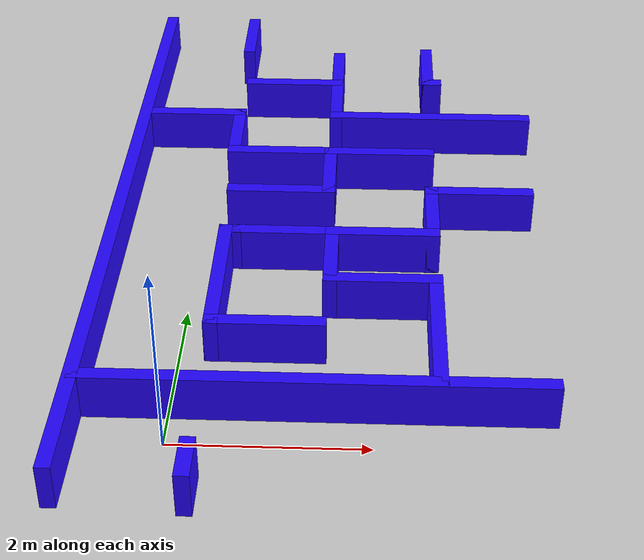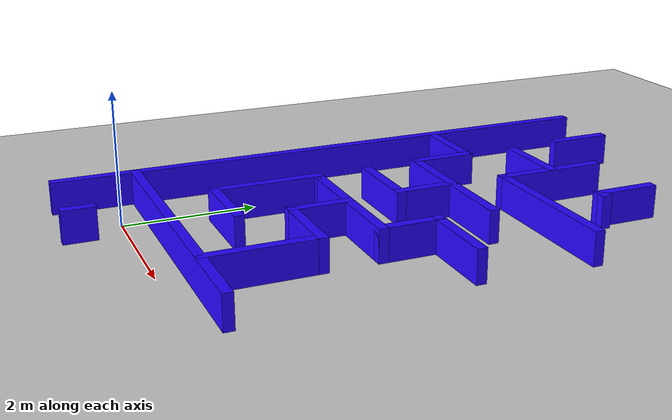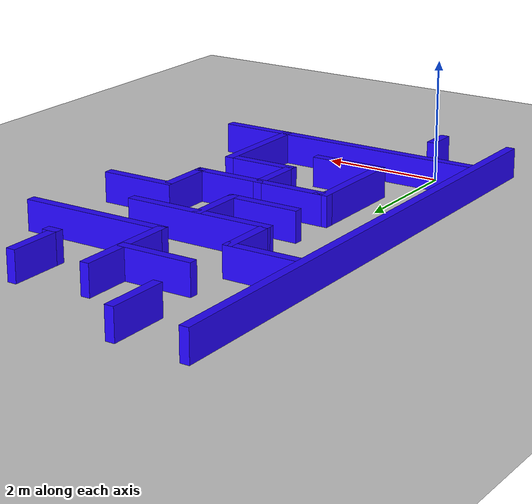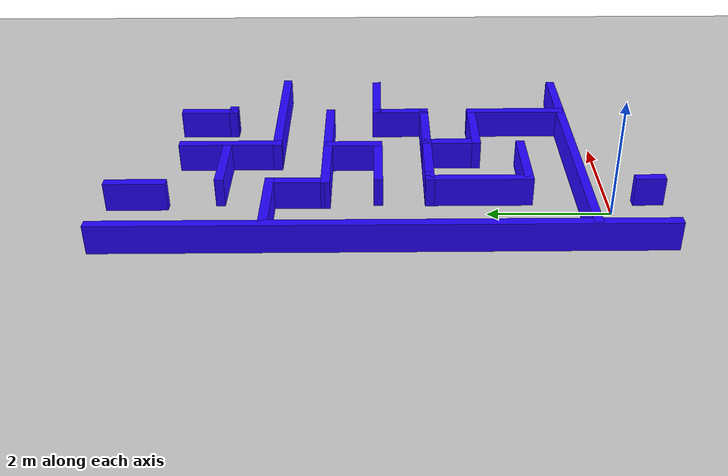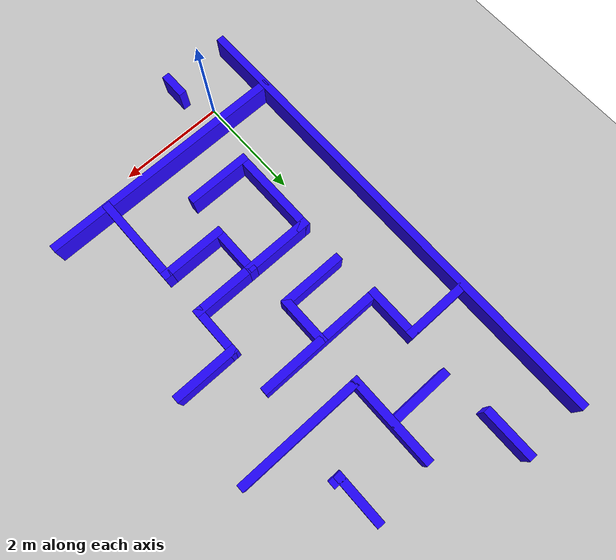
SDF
<sdf version="1.7">
 <world name="default">
  <model name="ground_plane">
   <static>1</static>
   <link name="link">
    <collision name="collision">
     <geometry><plane><normal>0 0 1</normal><size>100 100</size></plane></geometry>
     <surface><friction><ode><mu>100</mu><mu2>50</mu2></ode></friction></surface>
    </collision>
    <visual name="visual">
     <cast_shadows>0</cast_shadows>
     <geometry><plane><normal>0 0 1</normal><size>100 100</size></plane></geometry>
     <material>
      <script><uri>file://media/materials/scripts/gazebo.material</uri><name>Gazebo/Grey</name></script>
     </material>
    </visual>
   </link>
  </model>
  <model name="maze_blue">
   <link name="Wall_0">
    <pose>-5.9185 -0.1475 0 0 -0 1.5708</pose>
    <visual name="Wall_0_Visual">
     <pose>0 0 0.25 0 -0 0</pose>
     <geometry><box><size>9 0.15 0.5</size></box></geometry>
     <material>
      <script><uri>file://media/materials/scripts/gazebo.material</uri><name>Gazebo/Grey</name></script>
      <ambient>0.14 0.012 1 1</ambient>
      <shader type="pixel"/>
     </material>
     <meta><layer>0</layer></meta>
    </visual>
    <collision name="Wall_0_Collision">
     <pose>0 0 0.25 0 -0 0</pose>
     <geometry><box><size>9 0.15 0.5</size></box></geometry>
     <surface>
      <friction>
       <ode><mu>1</mu><mu2>1</mu2><fdir1>0 0 0</fdir1><slip1>0</slip1><slip2>0</slip2></ode>
       <torsional>
        <coefficient>1</coefficient>
        <patch_radius>0</patch_radius>
        <surface_radius>0</surface_radius>
        <use_patch_radius>1</use_patch_radius>
        <ode><slip>0</slip></ode>
       </torsional>
      </friction>
      <bounce><restitution_coefficient>0</restitution_coefficient><threshold>1e+06</threshold></bounce>
      <contact>
       <collide_without_contact>0</collide_without_contact>
       <collide_without_contact_bitmask>1</collide_without_contact_bitmask>
       <collide_bitmask>1</collide_bitmask>
       <ode>
        <soft_cfm>0</soft_cfm>
        <soft_erp>0.2</soft_erp>
        <kp>1e+13</kp>
        <kd>1</kd>
        <max_vel>0.01</max_vel>
        <min_depth>0</min_depth>
       </ode>
       <bullet>
        <split_impulse>1</split_impulse>
        <split_impulse_penetration_threshold>-0.01</split_impulse_penetration_threshold>
        <soft_cfm>0</soft_cfm>
        <soft_erp>0.2</soft_erp>
        <kp>1e+13</kp>
        <kd>1</kd>
       </bullet>
      </contact>
     </surface>
    </collision>
   </link>
   <link name="Wall_10">
    <pose>-3.5785 -3.3705 0 0 -0 0</pose>
    <visual name="Wall_10_Visual">
     <pose>0 0 0.25 0 -0 0</pose>
     <geometry><box><size>4.75 0.15 0.5</size></box></geometry>
     <material>
      <script><uri>file://media/materials/scripts/gazebo.material</uri><name>Gazebo/Grey</name></script>
      <ambient>0.14 0.012 1 1</ambient>
      <shader type="pixel"/>
     </material>
     <meta><layer>0</layer></meta>
    </visual>
    <collision name="Wall_10_Collision">
     <pose>0 0 0.25 0 -0 0</pose>
     <geometry><box><size>4.75 0.15 0.5</size></box></geometry>
     <surface>
      <friction>
       <ode><mu>1</mu><mu2>1</mu2><fdir1>0 0 0</fdir1><slip1>0</slip1><slip2>0</slip2></ode>
       <torsional>
        <coefficient>1</coefficient>
        <patch_radius>0</patch_radius>
        <surface_radius>0</surface_radius>
        <use_patch_radius>1</use_patch_radius>
        <ode><slip>0</slip></ode>
       </torsional>
      </friction>
      <bounce><restitution_coefficient>0</restitution_coefficient><threshold>1e+06</threshold></bounce>
      <contact>
       <collide_without_contact>0</collide_without_contact>
       <collide_without_contact_bitmask>1</collide_without_contact_bitmask>
       <collide_bitmask>1</collide_bitmask>
       <ode>
        <soft_cfm>0</soft_cfm>
        <soft_erp>0.2</soft_erp>
        <kp>1e+13</kp>
        <kd>1</kd>
        <max_vel>0.01</max_vel>
        <min_depth>0</min_depth>
       </ode>
       <bullet>
        <split_impulse>1</split_impulse>
        <split_impulse_penetration_threshold>-0.01</split_impulse_penetration_threshold>
        <soft_cfm>0</soft_cfm>
        <soft_erp>0.2</soft_erp>
        <kp>1e+13</kp>
        <kd>1</kd>
       </bullet>
      </contact>
     </surface>
    </collision>
   </link>
   <link name="Wall_26">
    <pose>-2.3595 -2.5505 0 0 -0 1.5708</pose>
    <visual name="Wall_26_Visual">
     <pose>0 0 0.25 0 -0 0</pose>
     <geometry><box><size>1.75 0.15 0.5</size></box></geometry>
     <material>
      <script><uri>file://media/materials/scripts/gazebo.material</uri><name>Gazebo/Grey</name></script>
      <ambient>0.14 0.012 1 1</ambient>
      <shader type="pixel"/>
     </material>
     <meta><layer>0</layer></meta>
    </visual>
    <collision name="Wall_26_Collision">
     <pose>0 0 0.25 0 -0 0</pose>
     <geometry><box><size>1.75 0.15 0.5</size></box></geometry>
     <surface>
      <friction>
       <ode><mu>1</mu><mu2>1</mu2><fdir1>0 0 0</fdir1><slip1>0</slip1><slip2>0</slip2></ode>
       <torsional>
        <coefficient>1</coefficient>
        <patch_radius>0</patch_radius>
        <surface_radius>0</surface_radius>
        <use_patch_radius>1</use_patch_radius>
        <ode><slip>0</slip></ode>
       </torsional>
      </friction>
      <bounce><restitution_coefficient>0</restitution_coefficient><threshold>1e+06</threshold></bounce>
      <contact>
       <collide_without_contact>0</collide_without_contact>
       <collide_without_contact_bitmask>1</collide_without_contact_bitmask>
       <collide_bitmask>1</collide_bitmask>
       <ode>
        <soft_cfm>0</soft_cfm>
        <soft_erp>0.2</soft_erp>
        <kp>1e+13</kp>
        <kd>1</kd>
        <max_vel>0.01</max_vel>
        <min_depth>0</min_depth>
       </ode>
       <bullet>
        <split_impulse>1</split_impulse>
        <split_impulse_penetration_threshold>-0.01</split_impulse_penetration_threshold>
        <soft_cfm>0</soft_cfm>
        <soft_erp>0.2</soft_erp>
        <kp>1e+13</kp>
        <kd>1</kd>
       </bullet>
      </contact>
     </surface>
    </collision>
   </link>
   <link name="Wall_27">
    <pose>-2.918 -1.7505 0 0 -0 3.14159</pose>
    <visual name="Wall_27_Visual">
     <pose>0 0 0.25 0 -0 0</pose>
     <geometry><box><size>1.26736 0.15 0.5</size></box></geometry>
     <material>
      <script><uri>file://media/materials/scripts/gazebo.material</uri><name>Gazebo/Grey</name></script>
      <ambient>0.14 0.012 1 1</ambient>
      <shader type="pixel"/>
     </material>
     <meta><layer>0</layer></meta>
    </visual>
    <collision name="Wall_27_Collision">
     <pose>0 0 0.25 0 -0 0</pose>
     <geometry><box><size>1.26736 0.15 0.5</size></box></geometry>
     <surface>
      <friction>
       <ode><mu>1</mu><mu2>1</mu2><fdir1>0 0 0</fdir1><slip1>0</slip1><slip2>0</slip2></ode>
       <torsional>
        <coefficient>1</coefficient>
        <patch_radius>0</patch_radius>
        <surface_radius>0</surface_radius>
        <use_patch_radius>1</use_patch_radius>
        <ode><slip>0</slip></ode>
       </torsional>
      </friction>
      <bounce><restitution_coefficient>0</restitution_coefficient><threshold>1e+06</threshold></bounce>
      <contact>
       <collide_without_contact>0</collide_without_contact>
       <collide_without_contact_bitmask>1</collide_without_contact_bitmask>
       <collide_bitmask>1</collide_bitmask>
       <ode>
        <soft_cfm>0</soft_cfm>
        <soft_erp>0.2</soft_erp>
        <kp>1e+13</kp>
        <kd>1</kd>
        <max_vel>0.01</max_vel>
        <min_depth>0</min_depth>
       </ode>
       <bullet>
        <split_impulse>1</split_impulse>
        <split_impulse_penetration_threshold>-0.01</split_impulse_penetration_threshold>
        <soft_cfm>0</soft_cfm>
        <soft_erp>0.2</soft_erp>
        <kp>1e+13</kp>
        <kd>1</kd>
       </bullet>
      </contact>
     </surface>
    </collision>
   </link>
   <link name="Wall_28">
    <pose>-3.4765 -1.3255 0 0 -0 1.5708</pose>
    <visual name="Wall_28_Visual">
     <pose>0 0 0.25 0 -0 0</pose>
     <geometry><box><size>1.00034 0.15 0.5</size></box></geometry>
     <material>
      <script><uri>file://media/materials/scripts/gazebo.material</uri><name>Gazebo/Grey</name></script>
      <ambient>0.14 0.012 1 1</ambient>
      <shader type="pixel"/>
     </material>
     <meta><layer>0</layer></meta>
    </visual>
    <collision name="Wall_28_Collision">
     <pose>0 0 0.25 0 -0 0</pose>
     <geometry><box><size>1.00034 0.15 0.5</size></box></geometry>
     <surface>
      <friction>
       <ode><mu>1</mu><mu2>1</mu2><fdir1>0 0 0</fdir1><slip1>0</slip1><slip2>0</slip2></ode>
       <torsional>
        <coefficient>1</coefficient>
        <patch_radius>0</patch_radius>
        <surface_radius>0</surface_radius>
        <use_patch_radius>1</use_patch_radius>
        <ode><slip>0</slip></ode>
       </torsional>
      </friction>
      <bounce><restitution_coefficient>0</restitution_coefficient><threshold>1e+06</threshold></bounce>
      <contact>
       <collide_without_contact>0</collide_without_contact>
       <collide_without_contact_bitmask>1</collide_without_contact_bitmask>
       <collide_bitmask>1</collide_bitmask>
       <ode>
        <soft_cfm>0</soft_cfm>
        <soft_erp>0.2</soft_erp>
        <kp>1e+13</kp>
        <kd>1</kd>
        <max_vel>0.01</max_vel>
        <min_depth>0</min_depth>
       </ode>
       <bullet>
        <split_impulse>1</split_impulse>
        <split_impulse_penetration_threshold>-0.01</split_impulse_penetration_threshold>
        <soft_cfm>0</soft_cfm>
        <soft_erp>0.2</soft_erp>
        <kp>1e+13</kp>
        <kd>1</kd>
       </bullet>
      </contact>
     </surface>
    </collision>
   </link>
   <link name="Wall_29">
    <pose>-4.018 -0.9005 0 0 -0 3.14159</pose>
    <visual name="Wall_29_Visual">
     <pose>0 0 0.25 0 -0 0</pose>
     <geometry><box><size>1.23267 0.15 0.5</size></box></geometry>
     <material>
      <script><uri>file://media/materials/scripts/gazebo.material</uri><name>Gazebo/Grey</name></script>
      <ambient>0.14 0.012 1 1</ambient>
      <shader type="pixel"/>
     </material>
     <meta><layer>0</layer></meta>
    </visual>
    <collision name="Wall_29_Collision">
     <pose>0 0 0.25 0 -0 0</pose>
     <geometry><box><size>1.23267 0.15 0.5</size></box></geometry>
     <surface>
      <friction>
       <ode><mu>1</mu><mu2>1</mu2><fdir1>0 0 0</fdir1><slip1>0</slip1><slip2>0</slip2></ode>
       <torsional>
        <coefficient>1</coefficient>
        <patch_radius>0</patch_radius>
        <surface_radius>0</surface_radius>
        <use_patch_radius>1</use_patch_radius>
        <ode><slip>0</slip></ode>
       </torsional>
      </friction>
      <bounce><restitution_coefficient>0</restitution_coefficient><threshold>1e+06</threshold></bounce>
      <contact>
       <collide_without_contact>0</collide_without_contact>
       <collide_without_contact_bitmask>1</collide_without_contact_bitmask>
       <collide_bitmask>1</collide_bitmask>
       <ode>
        <soft_cfm>0</soft_cfm>
        <soft_erp>0.2</soft_erp>
        <kp>1e+13</kp>
        <kd>1</kd>
        <max_vel>0.01</max_vel>
        <min_depth>0</min_depth>
       </ode>
       <bullet>
        <split_impulse>1</split_impulse>
        <split_impulse_penetration_threshold>-0.01</split_impulse_penetration_threshold>
        <soft_cfm>0</soft_cfm>
        <soft_erp>0.2</soft_erp>
        <kp>1e+13</kp>
        <kd>1</kd>
       </bullet>
      </contact>
     </surface>
    </collision>
   </link>
   <link name="Wall_30">
    <pose>-4.6095 -0.9005 0 0 -0 3.14159</pose>
    <visual name="Wall_30_Visual">
     <pose>0 0 0.25 0 -0 0</pose>
     <geometry><box><size>0.25 0.15 0.5</size></box></geometry>
     <material>
      <script><uri>file://media/materials/scripts/gazebo.material</uri><name>Gazebo/Grey</name></script>
      <ambient>0.14 0.012 1 1</ambient>
      <shader type="pixel"/>
     </material>
     <meta><layer>0</layer></meta>
    </visual>
    <collision name="Wall_30_Collision">
     <pose>0 0 0.25 0 -0 0</pose>
     <geometry><box><size>0.25 0.15 0.5</size></box></geometry>
     <surface>
      <friction>
       <ode><mu>1</mu><mu2>1</mu2><fdir1>0 0 0</fdir1><slip1>0</slip1><slip2>0</slip2></ode>
       <torsional>
        <coefficient>1</coefficient>
        <patch_radius>0</patch_radius>
        <surface_radius>0</surface_radius>
        <use_patch_radius>1</use_patch_radius>
        <ode><slip>0</slip></ode>
       </torsional>
      </friction>
      <bounce><restitution_coefficient>0</restitution_coefficient><threshold>1e+06</threshold></bounce>
      <contact>
       <collide_without_contact>0</collide_without_contact>
       <collide_without_contact_bitmask>1</collide_without_contact_bitmask>
       <collide_bitmask>1</collide_bitmask>
       <ode>
        <soft_cfm>0</soft_cfm>
        <soft_erp>0.2</soft_erp>
        <kp>1e+13</kp>
        <kd>1</kd>
        <max_vel>0.01</max_vel>
        <min_depth>0</min_depth>
       </ode>
       <bullet>
        <split_impulse>1</split_impulse>
        <split_impulse_penetration_threshold>-0.01</split_impulse_penetration_threshold>
        <soft_cfm>0</soft_cfm>
        <soft_erp>0.2</soft_erp>
        <kp>1e+13</kp>
        <kd>1</kd>
       </bullet>
      </contact>
     </surface>
    </collision>
   </link>
   <link name="Wall_31">
    <pose>-4.6595 -1.7005 0 0 0 -1.5708</pose>
    <visual name="Wall_31_Visual">
     <pose>0 0 0.25 0 -0 0</pose>
     <geometry><box><size>1.75 0.15 0.5</size></box></geometry>
     <material>
      <script><uri>file://media/materials/scripts/gazebo.material</uri><name>Gazebo/Grey</name></script>
      <ambient>0.14 0.012 1 1</ambient>
      <shader type="pixel"/>
     </material>
     <meta><layer>0</layer></meta>
    </visual>
    <collision name="Wall_31_Collision">
     <pose>0 0 0.25 0 -0 0</pose>
     <geometry><box><size>1.75 0.15 0.5</size></box></geometry>
     <surface>
      <friction>
       <ode><mu>1</mu><mu2>1</mu2><fdir1>0 0 0</fdir1><slip1>0</slip1><slip2>0</slip2></ode>
       <torsional>
        <coefficient>1</coefficient>
        <patch_radius>0</patch_radius>
        <surface_radius>0</surface_radius>
        <use_patch_radius>1</use_patch_radius>
        <ode><slip>0</slip></ode>
       </torsional>
      </friction>
      <bounce><restitution_coefficient>0</restitution_coefficient><threshold>1e+06</threshold></bounce>
      <contact>
       <collide_without_contact>0</collide_without_contact>
       <collide_without_contact_bitmask>1</collide_without_contact_bitmask>
       <collide_bitmask>1</collide_bitmask>
       <ode>
        <soft_cfm>0</soft_cfm>
        <soft_erp>0.2</soft_erp>
        <kp>1e+13</kp>
        <kd>1</kd>
        <max_vel>0.01</max_vel>
        <min_depth>0</min_depth>
       </ode>
       <bullet>
        <split_impulse>1</split_impulse>
        <split_impulse_penetration_threshold>-0.01</split_impulse_penetration_threshold>
        <soft_cfm>0</soft_cfm>
        <soft_erp>0.2</soft_erp>
        <kp>1e+13</kp>
        <kd>1</kd>
       </bullet>
      </contact>
     </surface>
    </collision>
   </link>
   <link name="Wall_32">
    <pose>-4.1095 -2.5005 0 0 -0 0</pose>
    <visual name="Wall_32_Visual">
     <pose>0 0 0.25 0 -0 0</pose>
     <geometry><box><size>1.25 0.15 0.5</size></box></geometry>
     <material>
      <script><uri>file://media/materials/scripts/gazebo.material</uri><name>Gazebo/Grey</name></script>
      <ambient>0.14 0.012 1 1</ambient>
      <shader type="pixel"/>
     </material>
     <meta><layer>0</layer></meta>
    </visual>
    <collision name="Wall_32_Collision">
     <pose>0 0 0.25 0 -0 0</pose>
     <geometry><box><size>1.25 0.15 0.5</size></box></geometry>
     <surface>
      <friction>
       <ode><mu>1</mu><mu2>1</mu2><fdir1>0 0 0</fdir1><slip1>0</slip1><slip2>0</slip2></ode>
       <torsional>
        <coefficient>1</coefficient>
        <patch_radius>0</patch_radius>
        <surface_radius>0</surface_radius>
        <use_patch_radius>1</use_patch_radius>
        <ode><slip>0</slip></ode>
       </torsional>
      </friction>
      <bounce><restitution_coefficient>0</restitution_coefficient><threshold>1e+06</threshold></bounce>
      <contact>
       <collide_without_contact>0</collide_without_contact>
       <collide_without_contact_bitmask>1</collide_without_contact_bitmask>
       <collide_bitmask>1</collide_bitmask>
       <ode>
        <soft_cfm>0</soft_cfm>
        <soft_erp>0.2</soft_erp>
        <kp>1e+13</kp>
        <kd>1</kd>
        <max_vel>0.01</max_vel>
        <min_depth>0</min_depth>
       </ode>
       <bullet>
        <split_impulse>1</split_impulse>
        <split_impulse_penetration_threshold>-0.01</split_impulse_penetration_threshold>
        <soft_cfm>0</soft_cfm>
        <soft_erp>0.2</soft_erp>
        <kp>1e+13</kp>
        <kd>1</kd>
       </bullet>
      </contact>
     </surface>
    </collision>
   </link>
   <link name="Wall_5">
    <pose>-4.6815 -4.4525 0 0 -0 1.5708</pose>
    <visual name="Wall_5_Visual">
     <pose>0 0 0.25 0 -0 0</pose>
     <geometry><box><size>0.5 0.15 0.5</size></box></geometry>
     <material>
      <script><uri>file://media/materials/scripts/gazebo.material</uri><name>Gazebo/Grey</name></script>
      <ambient>0.14 0.012 1 1</ambient>
      <shader type="pixel"/>
     </material>
     <meta><layer>0</layer></meta>
    </visual>
    <collision name="Wall_5_Collision">
     <pose>0 0 0.25 0 -0 0</pose>
     <geometry><box><size>0.5 0.15 0.5</size></box></geometry>
     <surface>
      <friction>
       <ode><mu>1</mu><mu2>1</mu2><fdir1>0 0 0</fdir1><slip1>0</slip1><slip2>0</slip2></ode>
       <torsional>
        <coefficient>1</coefficient>
        <patch_radius>0</patch_radius>
        <surface_radius>0</surface_radius>
        <use_patch_radius>1</use_patch_radius>
        <ode><slip>0</slip></ode>
       </torsional>
      </friction>
      <bounce><restitution_coefficient>0</restitution_coefficient><threshold>1e+06</threshold></bounce>
      <contact>
       <collide_without_contact>0</collide_without_contact>
       <collide_without_contact_bitmask>1</collide_without_contact_bitmask>
       <collide_bitmask>1</collide_bitmask>
       <ode>
        <soft_cfm>0</soft_cfm>
        <soft_erp>0.2</soft_erp>
        <kp>1e+13</kp>
        <kd>1</kd>
        <max_vel>0.01</max_vel>
        <min_depth>0</min_depth>
       </ode>
       <bullet>
        <split_impulse>1</split_impulse>
        <split_impulse_penetration_threshold>-0.01</split_impulse_penetration_threshold>
        <soft_cfm>0</soft_cfm>
        <soft_erp>0.2</soft_erp>
        <kp>1e+13</kp>
        <kd>1</kd>
       </bullet>
      </contact>
     </surface>
    </collision>
   </link>
   <link name="Wall_59">
    <pose>-2.918 -0.9005 0 0 -0 0</pose>
    <visual name="Wall_59_Visual">
     <pose>0 0 0.25 0 -0 0</pose>
     <geometry><box><size>1.26736 0.15 0.5</size></box></geometry>
     <material>
      <script><uri>file://media/materials/scripts/gazebo.material</uri><name>Gazebo/Grey</name></script>
      <ambient>0.14 0.012 1 1</ambient>
      <shader type="pixel"/>
     </material>
     <meta><layer>0</layer></meta>
    </visual>
    <collision name="Wall_59_Collision">
     <pose>0 0 0.25 0 -0 0</pose>
     <geometry><box><size>1.26736 0.15 0.5</size></box></geometry>
     <surface>
      <friction>
       <ode><mu>1</mu><mu2>1</mu2><fdir1>0 0 0</fdir1><slip1>0</slip1><slip2>0</slip2></ode>
       <torsional>
        <coefficient>1</coefficient>
        <patch_radius>0</patch_radius>
        <surface_radius>0</surface_radius>
        <use_patch_radius>1</use_patch_radius>
        <ode><slip>0</slip></ode>
       </torsional>
      </friction>
      <bounce><restitution_coefficient>0</restitution_coefficient><threshold>1e+06</threshold></bounce>
      <contact>
       <collide_without_contact>0</collide_without_contact>
       <collide_without_contact_bitmask>1</collide_without_contact_bitmask>
       <collide_bitmask>1</collide_bitmask>
       <ode>
        <soft_cfm>0</soft_cfm>
        <soft_erp>0.2</soft_erp>
        <kp>1e+13</kp>
        <kd>1</kd>
        <max_vel>0.01</max_vel>
        <min_depth>0</min_depth>
       </ode>
       <bullet>
        <split_impulse>1</split_impulse>
        <split_impulse_penetration_threshold>-0.01</split_impulse_penetration_threshold>
        <soft_cfm>0</soft_cfm>
        <soft_erp>0.2</soft_erp>
        <kp>1e+13</kp>
        <kd>1</kd>
       </bullet>
      </contact>
     </surface>
    </collision>
   </link>
   <link name="Wall_60">
    <pose>-2.3595 -0.4755 0 0 -0 1.5708</pose>
    <visual name="Wall_60_Visual">
     <pose>0 0 0.25 0 -0 0</pose>
     <geometry><box><size>1 0.15 0.5</size></box></geometry>
     <material>
      <script><uri>file://media/materials/scripts/gazebo.material</uri><name>Gazebo/Grey</name></script>
      <ambient>0.14 0.012 1 1</ambient>
      <shader type="pixel"/>
     </material>
     <meta><layer>0</layer></meta>
    </visual>
    <collision name="Wall_60_Collision">
     <pose>0 0 0.25 0 -0 0</pose>
     <geometry><box><size>1 0.15 0.5</size></box></geometry>
     <surface>
      <friction>
       <ode><mu>1</mu><mu2>1</mu2><fdir1>0 0 0</fdir1><slip1>0</slip1><slip2>0</slip2></ode>
       <torsional>
        <coefficient>1</coefficient>
        <patch_radius>0</patch_radius>
        <surface_radius>0</surface_radius>
        <use_patch_radius>1</use_patch_radius>
        <ode><slip>0</slip></ode>
       </torsional>
      </friction>
      <bounce><restitution_coefficient>0</restitution_coefficient><threshold>1e+06</threshold></bounce>
      <contact>
       <collide_without_contact>0</collide_without_contact>
       <collide_without_contact_bitmask>1</collide_without_contact_bitmask>
       <collide_bitmask>1</collide_bitmask>
       <ode>
        <soft_cfm>0</soft_cfm>
        <soft_erp>0.2</soft_erp>
        <kp>1e+13</kp>
        <kd>1</kd>
        <max_vel>0.01</max_vel>
        <min_depth>0</min_depth>
       </ode>
       <bullet>
        <split_impulse>1</split_impulse>
        <split_impulse_penetration_threshold>-0.01</split_impulse_penetration_threshold>
        <soft_cfm>0</soft_cfm>
        <soft_erp>0.2</soft_erp>
        <kp>1e+13</kp>
        <kd>1</kd>
       </bullet>
      </contact>
     </surface>
    </collision>
   </link>
   <link name="Wall_61">
    <pose>-1.8095 -0.0505 0 0 -0 0</pose>
    <visual name="Wall_61_Visual">
     <pose>0 0 0.25 0 -0 0</pose>
     <geometry><box><size>1.25 0.15 0.5</size></box></geometry>
     <material>
      <script><uri>file://media/materials/scripts/gazebo.material</uri><name>Gazebo/Grey</name></script>
      <ambient>0.14 0.012 1 1</ambient>
      <shader type="pixel"/>
     </material>
     <meta><layer>0</layer></meta>
    </visual>
    <collision name="Wall_61_Collision">
     <pose>0 0 0.25 0 -0 0</pose>
     <geometry><box><size>1.25 0.15 0.5</size></box></geometry>
     <surface>
      <friction>
       <ode><mu>1</mu><mu2>1</mu2><fdir1>0 0 0</fdir1><slip1>0</slip1><slip2>0</slip2></ode>
       <torsional>
        <coefficient>1</coefficient>
        <patch_radius>0</patch_radius>
        <surface_radius>0</surface_radius>
        <use_patch_radius>1</use_patch_radius>
        <ode><slip>0</slip></ode>
       </torsional>
      </friction>
      <bounce><restitution_coefficient>0</restitution_coefficient><threshold>1e+06</threshold></bounce>
      <contact>
       <collide_without_contact>0</collide_without_contact>
       <collide_without_contact_bitmask>1</collide_without_contact_bitmask>
       <collide_bitmask>1</collide_bitmask>
       <ode>
        <soft_cfm>0</soft_cfm>
        <soft_erp>0.2</soft_erp>
        <kp>1e+13</kp>
        <kd>1</kd>
        <max_vel>0.01</max_vel>
        <min_depth>0</min_depth>
       </ode>
       <bullet>
        <split_impulse>1</split_impulse>
        <split_impulse_penetration_threshold>-0.01</split_impulse_penetration_threshold>
        <soft_cfm>0</soft_cfm>
        <soft_erp>0.2</soft_erp>
        <kp>1e+13</kp>
        <kd>1</kd>
       </bullet>
      </contact>
     </surface>
    </collision>
   </link>
   <link name="Wall_73">
    <pose>-4.7425 3.8265 0 0 0 -1.5708</pose>
    <visual name="Wall_73_Visual">
     <pose>0 0 0.25 0 -0 0</pose>
     <geometry><box><size>1 0.15 0.5</size></box></geometry>
     <material>
      <script><uri>file://media/materials/scripts/gazebo.material</uri><name>Gazebo/Grey</name></script>
      <ambient>0.14 0.012 1 1</ambient>
      <shader type="pixel"/>
     </material>
     <meta><layer>0</layer></meta>
    </visual>
    <collision name="Wall_73_Collision">
     <pose>0 0 0.25 0 -0 0</pose>
     <geometry><box><size>1 0.15 0.5</size></box></geometry>
     <surface>
      <friction>
       <ode><mu>1</mu><mu2>1</mu2><fdir1>0 0 0</fdir1><slip1>0</slip1><slip2>0</slip2></ode>
       <torsional>
        <coefficient>1</coefficient>
        <patch_radius>0</patch_radius>
        <surface_radius>0</surface_radius>
        <use_patch_radius>1</use_patch_radius>
        <ode><slip>0</slip></ode>
       </torsional>
      </friction>
      <bounce><restitution_coefficient>0</restitution_coefficient><threshold>1e+06</threshold></bounce>
      <contact>
       <collide_without_contact>0</collide_without_contact>
       <collide_without_contact_bitmask>1</collide_without_contact_bitmask>
       <collide_bitmask>1</collide_bitmask>
       <ode>
        <soft_cfm>0</soft_cfm>
        <soft_erp>0.2</soft_erp>
        <kp>1e+13</kp>
        <kd>1</kd>
        <max_vel>0.01</max_vel>
        <min_depth>0</min_depth>
       </ode>
       <bullet>
        <split_impulse>1</split_impulse>
        <split_impulse_penetration_threshold>-0.01</split_impulse_penetration_threshold>
        <soft_cfm>0</soft_cfm>
        <soft_erp>0.2</soft_erp>
        <kp>1e+13</kp>
        <kd>1</kd>
       </bullet>
      </contact>
     </surface>
    </collision>
   </link>
   <link name="Wall_77">
    <pose>-2.2825 2.5425 0 0 -0 3.14159</pose>
    <visual name="Wall_77_Visual">
     <pose>0 0 0.25 0 -0 0</pose>
     <geometry><box><size>0.25 0.15 0.5</size></box></geometry>
     <material>
      <script><uri>file://media/materials/scripts/gazebo.material</uri><name>Gazebo/Grey</name></script>
      <ambient>0.14 0.012 1 1</ambient>
      <shader type="pixel"/>
     </material>
     <meta><layer>0</layer></meta>
    </visual>
    <collision name="Wall_77_Collision">
     <pose>0 0 0.25 0 -0 0</pose>
     <geometry><box><size>0.25 0.15 0.5</size></box></geometry>
     <surface>
      <friction>
       <ode><mu>1</mu><mu2>1</mu2><fdir1>0 0 0</fdir1><slip1>0</slip1><slip2>0</slip2></ode>
       <torsional>
        <coefficient>1</coefficient>
        <patch_radius>0</patch_radius>
        <surface_radius>0</surface_radius>
        <use_patch_radius>1</use_patch_radius>
        <ode><slip>0</slip></ode>
       </torsional>
      </friction>
      <bounce><restitution_coefficient>0</restitution_coefficient><threshold>1e+06</threshold></bounce>
      <contact>
       <collide_without_contact>0</collide_without_contact>
       <collide_without_contact_bitmask>1</collide_without_contact_bitmask>
       <collide_bitmask>1</collide_bitmask>
       <ode>
        <soft_cfm>0</soft_cfm>
        <soft_erp>0.2</soft_erp>
        <kp>1e+13</kp>
        <kd>1</kd>
        <max_vel>0.01</max_vel>
        <min_depth>0</min_depth>
       </ode>
       <bullet>
        <split_impulse>1</split_impulse>
        <split_impulse_penetration_threshold>-0.01</split_impulse_penetration_threshold>
        <soft_cfm>0</soft_cfm>
        <soft_erp>0.2</soft_erp>
        <kp>1e+13</kp>
        <kd>1</kd>
       </bullet>
      </contact>
     </surface>
    </collision>
   </link>
   <link name="Wall_78">
    <pose>-2.3325 2.9675 0 0 -0 1.5708</pose>
    <visual name="Wall_78_Visual">
     <pose>0 0 0.25 0 -0 0</pose>
     <geometry><box><size>1 0.15 0.5</size></box></geometry>
     <material>
      <script><uri>file://media/materials/scripts/gazebo.material</uri><name>Gazebo/Grey</name></script>
      <ambient>0.14 0.012 1 1</ambient>
      <shader type="pixel"/>
     </material>
     <meta><layer>0</layer></meta>
    </visual>
    <collision name="Wall_78_Collision">
     <pose>0 0 0.25 0 -0 0</pose>
     <geometry><box><size>1 0.15 0.5</size></box></geometry>
     <surface>
      <friction>
       <ode><mu>1</mu><mu2>1</mu2><fdir1>0 0 0</fdir1><slip1>0</slip1><slip2>0</slip2></ode>
       <torsional>
        <coefficient>1</coefficient>
        <patch_radius>0</patch_radius>
        <surface_radius>0</surface_radius>
        <use_patch_radius>1</use_patch_radius>
        <ode><slip>0</slip></ode>
       </torsional>
      </friction>
      <bounce><restitution_coefficient>0</restitution_coefficient><threshold>1e+06</threshold></bounce>
      <contact>
       <collide_without_contact>0</collide_without_contact>
       <collide_without_contact_bitmask>1</collide_without_contact_bitmask>
       <collide_bitmask>1</collide_bitmask>
       <ode>
        <soft_cfm>0</soft_cfm>
        <soft_erp>0.2</soft_erp>
        <kp>1e+13</kp>
        <kd>1</kd>
        <max_vel>0.01</max_vel>
        <min_depth>0</min_depth>
       </ode>
       <bullet>
        <split_impulse>1</split_impulse>
        <split_impulse_penetration_threshold>-0.01</split_impulse_penetration_threshold>
        <soft_cfm>0</soft_cfm>
        <soft_erp>0.2</soft_erp>
        <kp>1e+13</kp>
        <kd>1</kd>
       </bullet>
      </contact>
     </surface>
    </collision>
   </link>
   <link name="Wall_80">
    <pose>-2.3345 1.6495 0 0 -0 3.14159</pose>
    <visual name="Wall_80_Visual">
     <pose>0 0 0.25 0 -0 0</pose>
     <geometry><box><size>2.5 0.15 0.5</size></box></geometry>
     <material>
      <script><uri>file://media/materials/scripts/gazebo.material</uri><name>Gazebo/Grey</name></script>
      <ambient>0.14 0.012 1 1</ambient>
      <shader type="pixel"/>
     </material>
     <meta><layer>0</layer></meta>
    </visual>
    <collision name="Wall_80_Collision">
     <pose>0 0 0.25 0 -0 0</pose>
     <geometry><box><size>2.5 0.15 0.5</size></box></geometry>
     <surface>
      <friction>
       <ode><mu>1</mu><mu2>1</mu2><fdir1>0 0 0</fdir1><slip1>0</slip1><slip2>0</slip2></ode>
       <torsional>
        <coefficient>1</coefficient>
        <patch_radius>0</patch_radius>
        <surface_radius>0</surface_radius>
        <use_patch_radius>1</use_patch_radius>
        <ode><slip>0</slip></ode>
       </torsional>
      </friction>
      <bounce><restitution_coefficient>0</restitution_coefficient><threshold>1e+06</threshold></bounce>
      <contact>
       <collide_without_contact>0</collide_without_contact>
       <collide_without_contact_bitmask>1</collide_without_contact_bitmask>
       <collide_bitmask>1</collide_bitmask>
       <ode>
        <soft_cfm>0</soft_cfm>
        <soft_erp>0.2</soft_erp>
        <kp>1e+13</kp>
        <kd>1</kd>
        <max_vel>0.01</max_vel>
        <min_depth>0</min_depth>
       </ode>
       <bullet>
        <split_impulse>1</split_impulse>
        <split_impulse_penetration_threshold>-0.01</split_impulse_penetration_threshold>
        <soft_cfm>0</soft_cfm>
        <soft_erp>0.2</soft_erp>
        <kp>1e+13</kp>
        <kd>1</kd>
       </bullet>
      </contact>
     </surface>
    </collision>
   </link>
   <link name="Wall_81">
    <pose>-3.5095 2.4495 0 0 -0 1.5708</pose>
    <visual name="Wall_81_Visual">
     <pose>0 0 0.25 0 -0 0</pose>
     <geometry><box><size>1.75 0.15 0.5</size></box></geometry>
     <material>
      <script><uri>file://media/materials/scripts/gazebo.material</uri><name>Gazebo/Grey</name></script>
      <ambient>0.14 0.012 1 1</ambient>
      <shader type="pixel"/>
     </material>
     <meta><layer>0</layer></meta>
    </visual>
    <collision name="Wall_81_Collision">
     <pose>0 0 0.25 0 -0 0</pose>
     <geometry><box><size>1.75 0.15 0.5</size></box></geometry>
     <surface>
      <friction>
       <ode><mu>1</mu><mu2>1</mu2><fdir1>0 0 0</fdir1><slip1>0</slip1><slip2>0</slip2></ode>
       <torsional>
        <coefficient>1</coefficient>
        <patch_radius>0</patch_radius>
        <surface_radius>0</surface_radius>
        <use_patch_radius>1</use_patch_radius>
        <ode><slip>0</slip></ode>
       </torsional>
      </friction>
      <bounce><restitution_coefficient>0</restitution_coefficient><threshold>1e+06</threshold></bounce>
      <contact>
       <collide_without_contact>0</collide_without_contact>
       <collide_without_contact_bitmask>1</collide_without_contact_bitmask>
       <collide_bitmask>1</collide_bitmask>
       <ode>
        <soft_cfm>0</soft_cfm>
        <soft_erp>0.2</soft_erp>
        <kp>1e+13</kp>
        <kd>1</kd>
        <max_vel>0.01</max_vel>
        <min_depth>0</min_depth>
       </ode>
       <bullet>
        <split_impulse>1</split_impulse>
        <split_impulse_penetration_threshold>-0.01</split_impulse_penetration_threshold>
        <soft_cfm>0</soft_cfm>
        <soft_erp>0.2</soft_erp>
        <kp>1e+13</kp>
        <kd>1</kd>
       </bullet>
      </contact>
     </surface>
    </collision>
   </link>
   <link name="Wall_83">
    <pose>-4.0755 2.4925 0 0 -0 3.14159</pose>
    <visual name="Wall_83_Visual">
     <pose>0 0 0.25 0 -0 0</pose>
     <geometry><box><size>1.25 0.15 0.5</size></box></geometry>
     <material>
      <script><uri>file://media/materials/scripts/gazebo.material</uri><name>Gazebo/Grey</name></script>
      <ambient>0.14 0.012 1 1</ambient>
      <shader type="pixel"/>
     </material>
     <meta><layer>0</layer></meta>
    </visual>
    <collision name="Wall_83_Collision">
     <pose>0 0 0.25 0 -0 0</pose>
     <geometry><box><size>1.25 0.15 0.5</size></box></geometry>
     <surface>
      <friction>
       <ode><mu>1</mu><mu2>1</mu2><fdir1>0 0 0</fdir1><slip1>0</slip1><slip2>0</slip2></ode>
       <torsional>
        <coefficient>1</coefficient>
        <patch_radius>0</patch_radius>
        <surface_radius>0</surface_radius>
        <use_patch_radius>1</use_patch_radius>
        <ode><slip>0</slip></ode>
       </torsional>
      </friction>
      <bounce><restitution_coefficient>0</restitution_coefficient><threshold>1e+06</threshold></bounce>
      <contact>
       <collide_without_contact>0</collide_without_contact>
       <collide_without_contact_bitmask>1</collide_without_contact_bitmask>
       <collide_bitmask>1</collide_bitmask>
       <ode>
        <soft_cfm>0</soft_cfm>
        <soft_erp>0.2</soft_erp>
        <kp>1e+13</kp>
        <kd>1</kd>
        <max_vel>0.01</max_vel>
        <min_depth>0</min_depth>
       </ode>
       <bullet>
        <split_impulse>1</split_impulse>
        <split_impulse_penetration_threshold>-0.01</split_impulse_penetration_threshold>
        <soft_cfm>0</soft_cfm>
        <soft_erp>0.2</soft_erp>
        <kp>1e+13</kp>
        <kd>1</kd>
       </bullet>
      </contact>
     </surface>
    </collision>
   </link>
   <link name="Wall_85">
    <pose>-5.2685 1.6785 0 0 -0 0</pose>
    <visual name="Wall_85_Visual">
     <pose>0 0 0.25 0 -0 0</pose>
     <geometry><box><size>1.25 0.15 0.5</size></box></geometry>
     <material>
      <script><uri>file://media/materials/scripts/gazebo.material</uri><name>Gazebo/Grey</name></script>
      <ambient>0.14 0.012 1 1</ambient>
      <shader type="pixel"/>
     </material>
     <meta><layer>0</layer></meta>
    </visual>
    <collision name="Wall_85_Collision">
     <pose>0 0 0.25 0 -0 0</pose>
     <geometry><box><size>1.25 0.15 0.5</size></box></geometry>
     <surface>
      <friction>
       <ode><mu>1</mu><mu2>1</mu2><fdir1>0 0 0</fdir1><slip1>0</slip1><slip2>0</slip2></ode>
       <torsional>
        <coefficient>1</coefficient>
        <patch_radius>0</patch_radius>
        <surface_radius>0</surface_radius>
        <use_patch_radius>1</use_patch_radius>
        <ode><slip>0</slip></ode>
       </torsional>
      </friction>
      <bounce><restitution_coefficient>0</restitution_coefficient><threshold>1e+06</threshold></bounce>
      <contact>
       <collide_without_contact>0</collide_without_contact>
       <collide_without_contact_bitmask>1</collide_without_contact_bitmask>
       <collide_bitmask>1</collide_bitmask>
       <ode>
        <soft_cfm>0</soft_cfm>
        <soft_erp>0.2</soft_erp>
        <kp>1e+13</kp>
        <kd>1</kd>
        <max_vel>0.01</max_vel>
        <min_depth>0</min_depth>
       </ode>
       <bullet>
        <split_impulse>1</split_impulse>
        <split_impulse_penetration_threshold>-0.01</split_impulse_penetration_threshold>
        <soft_cfm>0</soft_cfm>
        <soft_erp>0.2</soft_erp>
        <kp>1e+13</kp>
        <kd>1</kd>
       </bullet>
      </contact>
     </surface>
    </collision>
   </link>
   <link name="Wall_86">
    <pose>-4.7185 1.2315 0 0 0 -1.5708</pose>
    <visual name="Wall_86_Visual">
     <pose>0 0 0.25 0 -0 0</pose>
     <geometry><box><size>1.0435 0.15 0.5</size></box></geometry>
     <material>
      <script><uri>file://media/materials/scripts/gazebo.material</uri><name>Gazebo/Grey</name></script>
      <ambient>0.14 0.012 1 1</ambient>
      <shader type="pixel"/>
     </material>
     <meta><layer>0</layer></meta>
    </visual>
    <collision name="Wall_86_Collision">
     <pose>0 0 0.25 0 -0 0</pose>
     <geometry><box><size>1.0435 0.15 0.5</size></box></geometry>
     <surface>
      <friction>
       <ode><mu>1</mu><mu2>1</mu2><fdir1>0 0 0</fdir1><slip1>0</slip1><slip2>0</slip2></ode>
       <torsional>
        <coefficient>1</coefficient>
        <patch_radius>0</patch_radius>
        <surface_radius>0</surface_radius>
        <use_patch_radius>1</use_patch_radius>
        <ode><slip>0</slip></ode>
       </torsional>
      </friction>
      <bounce><restitution_coefficient>0</restitution_coefficient><threshold>1e+06</threshold></bounce>
      <contact>
       <collide_without_contact>0</collide_without_contact>
       <collide_without_contact_bitmask>1</collide_without_contact_bitmask>
       <collide_bitmask>1</collide_bitmask>
       <ode>
        <soft_cfm>0</soft_cfm>
        <soft_erp>0.2</soft_erp>
        <kp>1e+13</kp>
        <kd>1</kd>
        <max_vel>0.01</max_vel>
        <min_depth>0</min_depth>
       </ode>
       <bullet>
        <split_impulse>1</split_impulse>
        <split_impulse_penetration_threshold>-0.01</split_impulse_penetration_threshold>
        <soft_cfm>0</soft_cfm>
        <soft_erp>0.2</soft_erp>
        <kp>1e+13</kp>
        <kd>1</kd>
       </bullet>
      </contact>
     </surface>
    </collision>
   </link>
   <link name="Wall_87">
    <pose>-3.548 0.784616 0 0 -0 9.9e-05</pose>
    <visual name="Wall_87_Visual">
     <pose>0 0 0.25 0 -0 0</pose>
     <geometry><box><size>2.491 0.15 0.5</size></box></geometry>
     <material>
      <script><uri>file://media/materials/scripts/gazebo.material</uri><name>Gazebo/Grey</name></script>
      <ambient>0.14 0.012 1 1</ambient>
      <shader type="pixel"/>
     </material>
     <meta><layer>0</layer></meta>
    </visual>
    <collision name="Wall_87_Collision">
     <pose>0 0 0.25 0 -0 0</pose>
     <geometry><box><size>2.491 0.15 0.5</size></box></geometry>
     <surface>
      <friction>
       <ode><mu>1</mu><mu2>1</mu2><fdir1>0 0 0</fdir1><slip1>0</slip1><slip2>0</slip2></ode>
       <torsional>
        <coefficient>1</coefficient>
        <patch_radius>0</patch_radius>
        <surface_radius>0</surface_radius>
        <use_patch_radius>1</use_patch_radius>
        <ode><slip>0</slip></ode>
       </torsional>
      </friction>
      <bounce><restitution_coefficient>0</restitution_coefficient><threshold>1e+06</threshold></bounce>
      <contact>
       <collide_without_contact>0</collide_without_contact>
       <collide_without_contact_bitmask>1</collide_without_contact_bitmask>
       <collide_bitmask>1</collide_bitmask>
       <ode>
        <soft_cfm>0</soft_cfm>
        <soft_erp>0.2</soft_erp>
        <kp>1e+13</kp>
        <kd>1</kd>
        <max_vel>0.01</max_vel>
        <min_depth>0</min_depth>
       </ode>
       <bullet>
        <split_impulse>1</split_impulse>
        <split_impulse_penetration_threshold>-0.01</split_impulse_penetration_threshold>
        <soft_cfm>0</soft_cfm>
        <soft_erp>0.2</soft_erp>
        <kp>1e+13</kp>
        <kd>1</kd>
       </bullet>
      </contact>
     </surface>
    </collision>
   </link>
   <link name="Wall_89">
    <pose>-3.5455 0.3585 0 0 0 -1.5708</pose>
    <visual name="Wall_89_Visual">
     <pose>0 0 0.25 0 -0 0</pose>
     <geometry><box><size>1 0.15 0.5</size></box></geometry>
     <material>
      <script><uri>file://media/materials/scripts/gazebo.material</uri><name>Gazebo/Grey</name></script>
      <ambient>0.14 0.012 1 1</ambient>
      <shader type="pixel"/>
     </material>
     <meta><layer>0</layer></meta>
    </visual>
    <collision name="Wall_89_Collision">
     <pose>0 0 0.25 0 -0 0</pose>
     <geometry><box><size>1 0.15 0.5</size></box></geometry>
     <surface>
      <friction>
       <ode><mu>1</mu><mu2>1</mu2><fdir1>0 0 0</fdir1><slip1>0</slip1><slip2>0</slip2></ode>
       <torsional>
        <coefficient>1</coefficient>
        <patch_radius>0</patch_radius>
        <surface_radius>0</surface_radius>
        <use_patch_radius>1</use_patch_radius>
        <ode><slip>0</slip></ode>
       </torsional>
      </friction>
      <bounce><restitution_coefficient>0</restitution_coefficient><threshold>1e+06</threshold></bounce>
      <contact>
       <collide_without_contact>0</collide_without_contact>
       <collide_without_contact_bitmask>1</collide_without_contact_bitmask>
       <collide_bitmask>1</collide_bitmask>
       <ode>
        <soft_cfm>0</soft_cfm>
        <soft_erp>0.2</soft_erp>
        <kp>1e+13</kp>
        <kd>1</kd>
        <max_vel>0.01</max_vel>
        <min_depth>0</min_depth>
       </ode>
       <bullet>
        <split_impulse>1</split_impulse>
        <split_impulse_penetration_threshold>-0.01</split_impulse_penetration_threshold>
        <soft_cfm>0</soft_cfm>
        <soft_erp>0.2</soft_erp>
        <kp>1e+13</kp>
        <kd>1</kd>
       </bullet>
      </contact>
     </surface>
    </collision>
   </link>
   <link name="Wall_90">
    <pose>-4.0955 -0.0665 0 0 -0 3.14159</pose>
    <visual name="Wall_90_Visual">
     <pose>0 0 0.25 0 -0 0</pose>
     <geometry><box><size>1.25 0.15 0.5</size></box></geometry>
     <material>
      <script><uri>file://media/materials/scripts/gazebo.material</uri><name>Gazebo/Grey</name></script>
      <ambient>0.14 0.012 1 1</ambient>
      <shader type="pixel"/>
     </material>
     <meta><layer>0</layer></meta>
    </visual>
    <collision name="Wall_90_Collision">
     <pose>0 0 0.25 0 -0 0</pose>
     <geometry><box><size>1.25 0.15 0.5</size></box></geometry>
     <surface>
      <friction>
       <ode><mu>1</mu><mu2>1</mu2><fdir1>0 0 0</fdir1><slip1>0</slip1><slip2>0</slip2></ode>
       <torsional>
        <coefficient>1</coefficient>
        <patch_radius>0</patch_radius>
        <surface_radius>0</surface_radius>
        <use_patch_radius>1</use_patch_radius>
        <ode><slip>0</slip></ode>
       </torsional>
      </friction>
      <bounce><restitution_coefficient>0</restitution_coefficient><threshold>1e+06</threshold></bounce>
      <contact>
       <collide_without_contact>0</collide_without_contact>
       <collide_without_contact_bitmask>1</collide_without_contact_bitmask>
       <collide_bitmask>1</collide_bitmask>
       <ode>
        <soft_cfm>0</soft_cfm>
        <soft_erp>0.2</soft_erp>
        <kp>1e+13</kp>
        <kd>1</kd>
        <max_vel>0.01</max_vel>
        <min_depth>0</min_depth>
       </ode>
       <bullet>
        <split_impulse>1</split_impulse>
        <split_impulse_penetration_threshold>-0.01</split_impulse_penetration_threshold>
        <soft_cfm>0</soft_cfm>
        <soft_erp>0.2</soft_erp>
        <kp>1e+13</kp>
        <kd>1</kd>
       </bullet>
      </contact>
     </surface>
    </collision>
   </link>
   <static>1</static>
   <pose>4.99315 3.8048 0 0 -0 0</pose>
  </model>
 </world>
</sdf>
